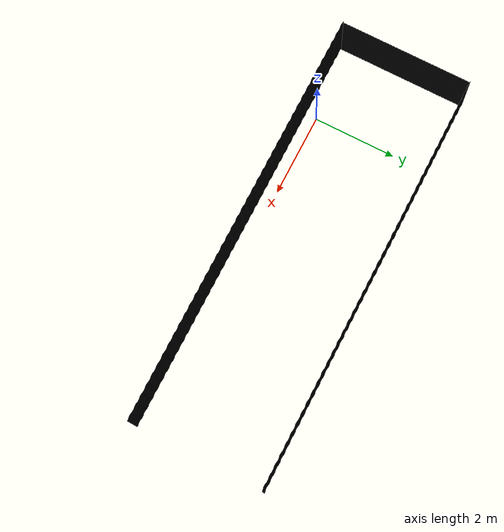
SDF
<?xml version="1.0" ?>
<sdf version="1.7">
  <model name="container_wall">
    <link name="link">
      <visual name="visual">
        <geometry>
          <mesh>
            <uri>/home/user/ros2_ws/src/itls_robot_description/models/container_wall/meshes/container_wall.dae</uri>
          </mesh>
        </geometry>
      </visual>
      <collision name="collision">
        <geometry>
          <mesh>
            <uri>/home/user/ros2_ws/src/itls_robot_description/models/container_wall/meshes/container_wall.dae</uri>
          </mesh>
        </geometry>
      </collision>
    </link>
  </model>
</sdf>
